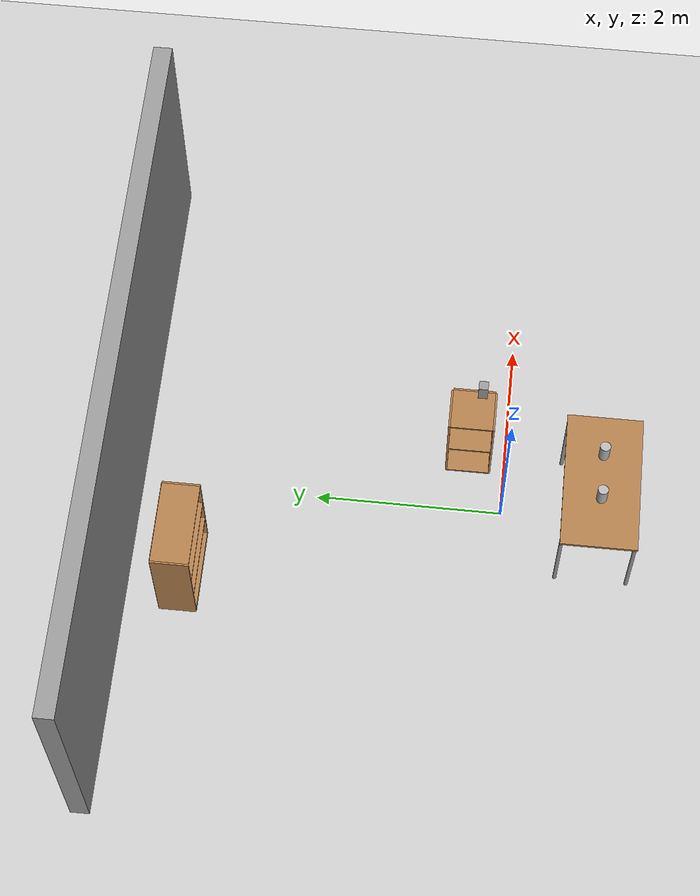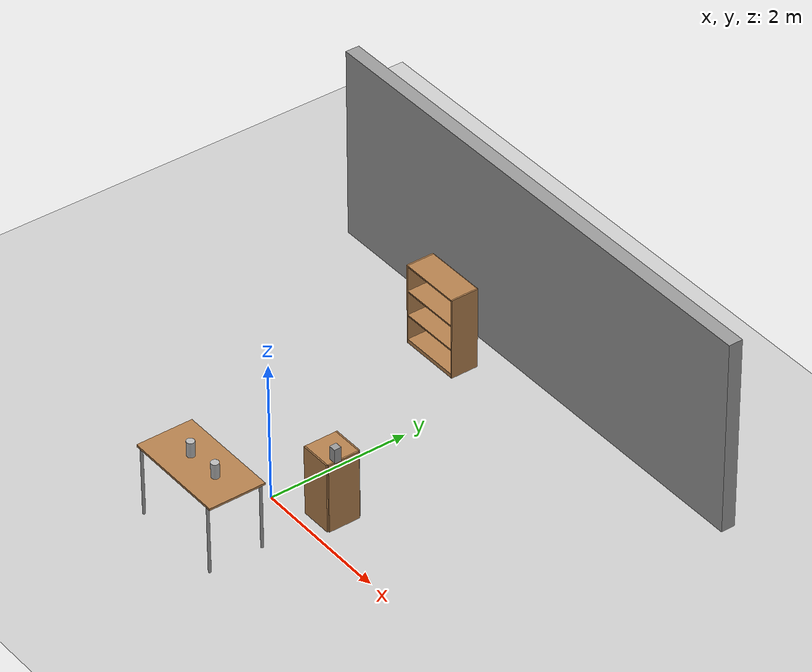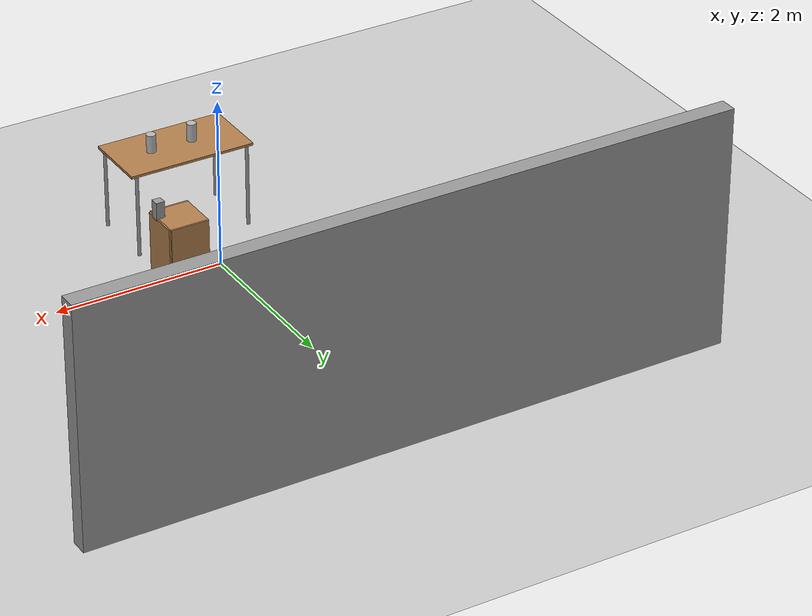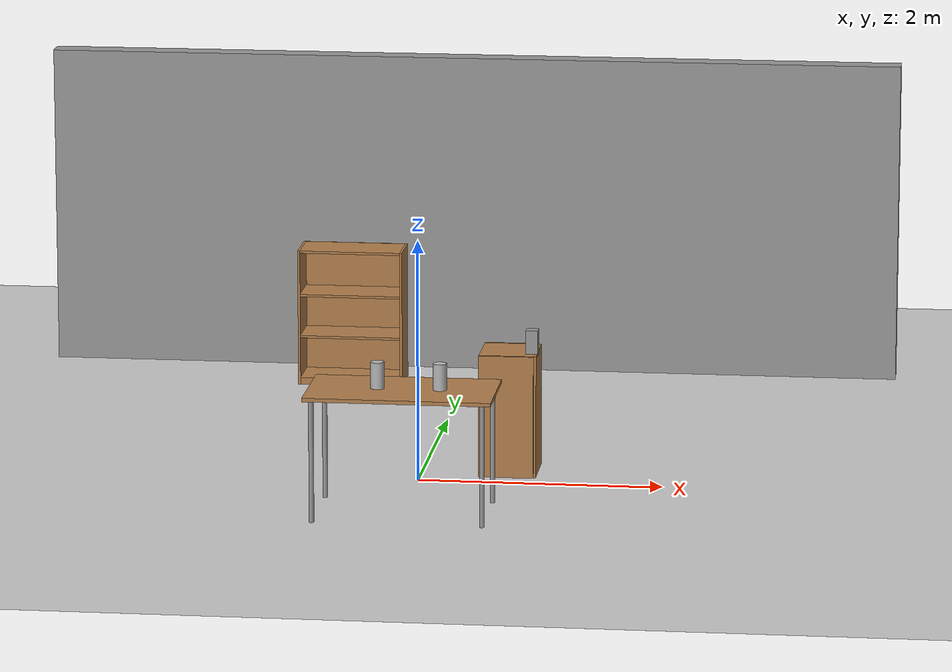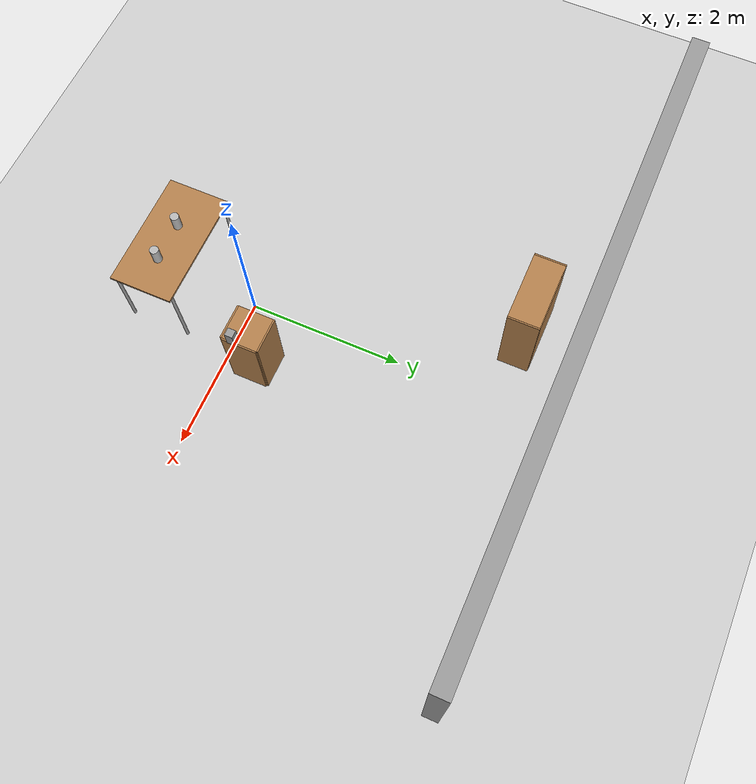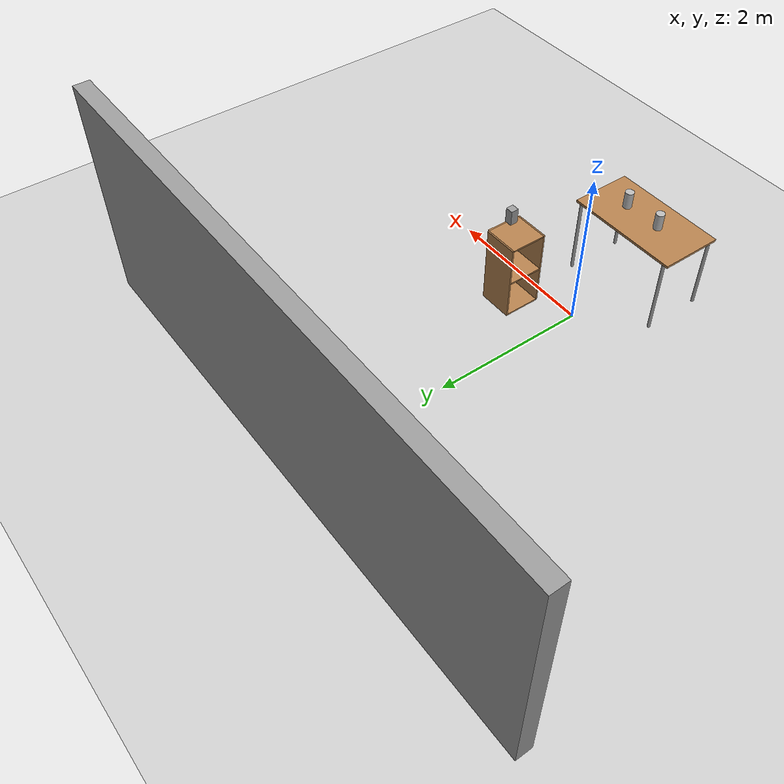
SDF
<sdf version="1.4">
 <world name="default">
  <model name="ground_plane">
   <static>1</static>
   <link name="link">
    <collision name="collision">
     <geometry><plane><normal>0 0 1</normal><size>100 100</size></plane></geometry>
     <surface><friction><ode><mu>100</mu><mu2>50</mu2></ode></friction></surface>
    </collision>
    <visual name="visual">
     <cast_shadows>0</cast_shadows>
     <geometry><plane><normal>0 0 1</normal><size>100 100</size></plane></geometry>
     <material>
      <script><uri>file://media/materials/scripts/gazebo.material</uri><name>Gazebo/Grey</name></script>
     </material>
    </visual>
    <velocity_decay><linear>0</linear><angular>0</angular></velocity_decay>
   </link>
  </model>
  <light name="sun" type="directional">
   <pose>0 0 10 0 -0 0</pose>
   <diffuse>0.8 0.8 0.8 1</diffuse>
   <specular>0.2 0.2 0.2 1</specular>
   <attenuation>
    <range>1000</range>
    <constant>0.9</constant>
    <linear>0.01</linear>
    <quadratic>0.001</quadratic>
   </attenuation>
   <direction>0.5 0.1 -0.9</direction>
  </light>
  <physics type="ode">
   <max_step_size>0.001</max_step_size>
   <real_time_factor>1</real_time_factor>
   <real_time_update_rate>1000</real_time_update_rate>
   <gravity>0 0 -9.8</gravity>
  </physics>
  <scene><ambient>0.4 0.4 0.4 1</ambient><background>0.7 0.7 0.7 1</background><shadows>1</shadows></scene>
  <model name="cabinet">
   <static>1</static>
   <link name="cabinet_bottom_plate">
    <inertial>
     <pose>0 0 -1 0 -0 0</pose>
     <inertia><ixx>2.05</ixx><ixy>0</ixy><ixz>0</ixz><iyy>2.05</iyy><iyz>0</iyz><izz>2.05</izz></inertia>
     <mass>25</mass>
    </inertial>
    <collision name="cabinet_bottom_plate_geom">
     <pose>0 0 0.01 0 -0 0</pose>
     <geometry><box><size>0.45 0.45 0.02</size></box></geometry>
    </collision>
    <visual name="cabinet_bottom_plate_geom_visual">
     <pose>0 0 0.01 0 -0 0</pose>
     <geometry><box><size>0.45 0.45 0.02</size></box></geometry>
     <material>
      <script><uri>file://media/materials/scripts/gazebo.material</uri><name>Gazebo/Wood</name></script>
     </material>
    </visual>
    <collision name="cabinet_bottom_plate_geom_cabinet_back_plate">
     <pose>0.235 0 0.51 0 -0 0</pose>
     <geometry><box><size>0.02 0.45 1.02</size></box></geometry>
    </collision>
    <visual name="cabinet_bottom_plate_geom_cabinet_back_plate_visual">
     <pose>0.235 0 0.51 0 -0 0</pose>
     <geometry><box><size>0.02 0.45 1.02</size></box></geometry>
     <material>
      <script><uri>file://media/materials/scripts/gazebo.material</uri><name>Gazebo/Wood</name></script>
     </material>
    </visual>
    <collision name="cabinet_bottom_plate_geom_cabinet_left_plate">
     <pose>0 0.235 0.51 0 -0 0</pose>
     <geometry><box><size>0.45 0.02 1.02</size></box></geometry>
    </collision>
    <visual name="cabinet_bottom_plate_geom_cabinet_left_plate_visual">
     <pose>0 0.235 0.51 0 -0 0</pose>
     <geometry><box><size>0.45 0.02 1.02</size></box></geometry>
     <material>
      <script><uri>file://media/materials/scripts/gazebo.material</uri><name>Gazebo/Wood</name></script>
     </material>
    </visual>
    <collision name="cabinet_bottom_plate_geom_cabinet_middle_plate">
     <pose>0 0 0.51 0 -0 0</pose>
     <geometry><box><size>0.45 0.45 0.02</size></box></geometry>
    </collision>
    <visual name="cabinet_bottom_plate_geom_cabinet_middle_plate_visual">
     <pose>0 0 0.51 0 -0 0</pose>
     <geometry><box><size>0.45 0.45 0.02</size></box></geometry>
     <material>
      <script><uri>file://media/materials/scripts/gazebo.material</uri><name>Gazebo/Wood</name></script>
     </material>
    </visual>
    <collision name="cabinet_bottom_plate_geom_cabinet_right_plate">
     <pose>0 -0.235 0.51 0 -0 0</pose>
     <geometry><box><size>0.45 0.02 1.02</size></box></geometry>
    </collision>
    <visual name="cabinet_bottom_plate_geom_cabinet_right_plate_visual">
     <pose>0 -0.235 0.51 0 -0 0</pose>
     <geometry><box><size>0.45 0.02 1.02</size></box></geometry>
     <material>
      <script><uri>file://media/materials/scripts/gazebo.material</uri><name>Gazebo/Wood</name></script>
     </material>
    </visual>
    <collision name="cabinet_bottom_plate_geom_cabinet_top_plate">
     <pose>0 0 1.01 0 -0 0</pose>
     <geometry><box><size>0.45 0.45 0.02</size></box></geometry>
    </collision>
    <visual name="cabinet_bottom_plate_geom_cabinet_top_plate_visual">
     <pose>0 0 1.01 0 -0 0</pose>
     <geometry><box><size>0.45 0.45 0.02</size></box></geometry>
     <material>
      <script><uri>file://media/materials/scripts/gazebo.material</uri><name>Gazebo/Wood</name></script>
     </material>
    </visual>
    <velocity_decay><linear>0</linear><angular>0</angular></velocity_decay>
   </link>
   <pose>0.7 0.4 0 0 -0 0</pose>
  </model>
  <model name="table">
   <static>1</static>
   <link name="link">
    <collision name="surface">
     <pose>0 0 1 0 -0 0</pose>
     <geometry><box><size>1.5 0.8 0.03</size></box></geometry>
    </collision>
    <visual name="visual1">
     <pose>0 0 1 0 -0 0</pose>
     <geometry><box><size>1.5 0.8 0.03</size></box></geometry>
     <material>
      <script><uri>file://media/materials/scripts/gazebo.material</uri><name>Gazebo/Wood</name></script>
     </material>
    </visual>
    <collision name="front_left_leg">
     <pose>0.68 0.38 0.5 0 -0 0</pose>
     <geometry><cylinder><radius>0.02</radius><length>1</length></cylinder></geometry>
    </collision>
    <visual name="front_left_leg">
     <pose>0.68 0.38 0.5 0 -0 0</pose>
     <geometry><cylinder><radius>0.02</radius><length>1</length></cylinder></geometry>
     <material>
      <script><uri>file://media/materials/scripts/gazebo.material</uri><name>Gazebo/Grey</name></script>
     </material>
    </visual>
    <collision name="front_right_leg">
     <pose>0.68 -0.38 0.5 0 -0 0</pose>
     <geometry><cylinder><radius>0.02</radius><length>1</length></cylinder></geometry>
    </collision>
    <visual name="front_right_leg">
     <pose>0.68 -0.38 0.5 0 -0 0</pose>
     <geometry><cylinder><radius>0.02</radius><length>1</length></cylinder></geometry>
     <material>
      <script><uri>file://media/materials/scripts/gazebo.material</uri><name>Gazebo/Grey</name></script>
     </material>
    </visual>
    <collision name="back_right_leg">
     <pose>-0.68 -0.38 0.5 0 -0 0</pose>
     <geometry><cylinder><radius>0.02</radius><length>1</length></cylinder></geometry>
    </collision>
    <visual name="back_right_leg">
     <pose>-0.68 -0.38 0.5 0 -0 0</pose>
     <geometry><cylinder><radius>0.02</radius><length>1</length></cylinder></geometry>
     <material>
      <script><uri>file://media/materials/scripts/gazebo.material</uri><name>Gazebo/Grey</name></script>
     </material>
    </visual>
    <collision name="back_left_leg">
     <pose>-0.68 0.38 0.5 0 -0 0</pose>
     <geometry><cylinder><radius>0.02</radius><length>1</length></cylinder></geometry>
    </collision>
    <visual name="back_left_leg">
     <pose>-0.68 0.38 0.5 0 -0 0</pose>
     <geometry><cylinder><radius>0.02</radius><length>1</length></cylinder></geometry>
     <material>
      <script><uri>file://media/materials/scripts/gazebo.material</uri><name>Gazebo/Grey</name></script>
     </material>
    </visual>
    <velocity_decay><linear>0</linear><angular>0</angular></velocity_decay>
   </link>
   <pose>0 -1 0 0 -0 0</pose>
  </model>
  <model name="bookshelf">
   <static>1</static>
   <link name="link">
    <inertial><mass>1</mass></inertial>
    <collision name="back">
     <pose>0 0.005 0.6 0 -0 0</pose>
     <geometry><box><size>0.9 0.01 1.2</size></box></geometry>
    </collision>
    <visual name="visual1">
     <pose>0 0.005 0.6 0 -0 0</pose>
     <geometry><box><size>0.9 0.01 1.2</size></box></geometry>
     <material>
      <script><uri>file://media/materials/scripts/gazebo.material</uri><name>Gazebo/Wood</name></script>
     </material>
    </visual>
    <collision name="left_side">
     <pose>0.45 -0.195 0.6 0 -0 0</pose>
     <geometry><box><size>0.02 0.4 1.2</size></box></geometry>
    </collision>
    <visual name="visual2">
     <pose>0.45 -0.195 0.6 0 -0 0</pose>
     <geometry><box><size>0.02 0.4 1.2</size></box></geometry>
     <material>
      <script><uri>file://media/materials/scripts/gazebo.material</uri><name>Gazebo/Wood</name></script>
     </material>
    </visual>
    <collision name="right_side">
     <pose>-0.45 -0.195 0.6 0 -0 0</pose>
     <geometry><box><size>0.02 0.4 1.2</size></box></geometry>
    </collision>
    <visual name="visual3">
     <pose>-0.45 -0.195 0.6 0 -0 0</pose>
     <geometry><box><size>0.02 0.4 1.2</size></box></geometry>
     <material>
      <script><uri>file://media/materials/scripts/gazebo.material</uri><name>Gazebo/Wood</name></script>
     </material>
    </visual>
    <collision name="bottom">
     <pose>0 -0.195 0.03 0 -0 0</pose>
     <geometry><box><size>0.88 0.4 0.06</size></box></geometry>
    </collision>
    <visual name="visual4">
     <pose>0 -0.195 0.03 0 -0 0</pose>
     <geometry><box><size>0.88 0.4 0.06</size></box></geometry>
     <material>
      <script><uri>file://media/materials/scripts/gazebo.material</uri><name>Gazebo/Wood</name></script>
     </material>
    </visual>
    <collision name="top">
     <pose>0 -0.195 1.19 0 -0 0</pose>
     <geometry><box><size>0.88 0.4 0.02</size></box></geometry>
    </collision>
    <visual name="visual5">
     <pose>0 -0.195 1.19 0 -0 0</pose>
     <geometry><box><size>0.88 0.4 0.02</size></box></geometry>
     <material>
      <script><uri>file://media/materials/scripts/gazebo.material</uri><name>Gazebo/Wood</name></script>
     </material>
    </visual>
    <collision name="low_shelf">
     <pose>0 -0.195 0.43 0 -0 0</pose>
     <geometry><box><size>0.88 0.4 0.02</size></box></geometry>
    </collision>
    <visual name="visual6">
     <pose>0 -0.195 0.43 0 -0 0</pose>
     <geometry><box><size>0.88 0.4 0.02</size></box></geometry>
     <material>
      <script><uri>file://media/materials/scripts/gazebo.material</uri><name>Gazebo/Wood</name></script>
     </material>
    </visual>
    <collision name="high_shelf">
     <pose>0 -0.195 0.8 0 -0 0</pose>
     <geometry><box><size>0.88 0.4 0.02</size></box></geometry>
    </collision>
    <visual name="visual7">
     <pose>0 -0.195 0.8 0 -0 0</pose>
     <geometry><box><size>0.88 0.4 0.02</size></box></geometry>
     <material>
      <script><uri>file://media/materials/scripts/gazebo.material</uri><name>Gazebo/Wood</name></script>
     </material>
    </visual>
    <velocity_decay><linear>0</linear><angular>0</angular></velocity_decay>
   </link>
   <pose>-1 3.52058 0 0 -0 0</pose>
  </model>
  <model name="grey_wall">
   <static>1</static>
   <link name="link">
    <pose>0 0 1.4 0 -0 0</pose>
    <collision name="collision"><geometry><box><size>7.5 0.2 2.8</size></box></geometry></collision>
    <visual name="visual">
     <cast_shadows>0</cast_shadows>
     <geometry><box><size>7.5 0.2 2.8</size></box></geometry>
     <material>
      <script>
       <uri>model://grey_wall/materials/scripts</uri>
       <uri>model://grey_wall/materials/textures</uri>
       <name>vrc/grey_wall</name>
      </script>
     </material>
    </visual>
    <velocity_decay><linear>0</linear><angular>0</angular></velocity_decay>
   </link>
   <pose>0 4 0 0 -0 0</pose>
  </model>
  <model name="beer">
   <link name="link">
    <pose>0 0 0.115 0 -0 0</pose>
    <inertial>
     <mass>0.39</mass>
     <inertia><ixx>0.00058</ixx><ixy>0</ixy><ixz>0</ixz><iyy>0.00058</iyy><iyz>0</iyz><izz>0.00019</izz></inertia>
    </inertial>
    <collision name="collision">
     <geometry><cylinder><radius>0.055</radius><length>0.23</length></cylinder></geometry>
    </collision>
    <visual name="visual">
     <geometry><cylinder><radius>0.055</radius><length>0.23</length></cylinder></geometry>
     <material>
      <script>
       <uri>model://beer/materials/scripts</uri>
       <uri>model://beer/materials/textures</uri>
       <name>Beer/Diffuse</name>
      </script>
     </material>
    </visual>
    <velocity_decay><linear>0</linear><angular>0</angular></velocity_decay>
   </link>
   <pose>-0.2 -1 1 0 -0 0</pose>
   <static>0</static>
  </model>
  <model name="beer1">
   <link name="link">
    <pose>0 0 0.115 0 -0 0</pose>
    <inertial>
     <mass>0.19</mass>
     <inertia><ixx>0.00058</ixx><ixy>0</ixy><ixz>0</ixz><iyy>0.00058</iyy><iyz>0</iyz><izz>0.00019</izz></inertia>
    </inertial>
    <collision name="collision">
     <geometry><cylinder><radius>0.055</radius><length>0.23</length></cylinder></geometry>
    </collision>
    <visual name="visual">
     <geometry><cylinder><radius>0.055</radius><length>0.23</length></cylinder></geometry>
     <material>
      <script>
       <uri>model://beer/materials/scripts</uri>
       <uri>model://beer/materials/textures</uri>
       <name>Beer/Diffuse</name>
      </script>
     </material>
    </visual>
    <velocity_decay><linear>0</linear><angular>0</angular></velocity_decay>
   </link>
   <pose>0.3 -1 1 0 -0 0</pose>
   <static>0</static>
  </model>
  <model name="unit_box_1">
   <pose>0.9 0.31 1.11 0 -0 0</pose>
   <link name="link">
    <inertial>
     <mass>1</mass>
     <inertia><ixx>1</ixx><ixy>0</ixy><ixz>0</ixz><iyy>1</iyy><iyz>0</iyz><izz>1</izz></inertia>
    </inertial>
    <collision name="collision"><geometry><box><size>0.1 0.1 0.21</size></box></geometry></collision>
    <visual name="visual">
     <geometry><box><size>0.1 0.1 0.21</size></box></geometry>
     <material>
      <script><uri>file://media/materials/scripts/gazebo.material</uri><name>Gazebo/Grey</name></script>
     </material>
    </visual>
    <velocity_decay><linear>0</linear><angular>0</angular></velocity_decay>
   </link>
   <static>0</static>
  </model>
 </world>
</sdf>
